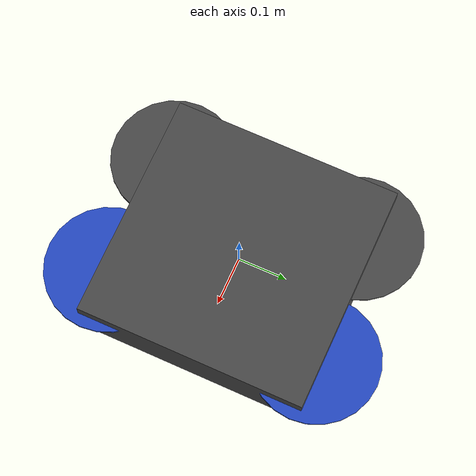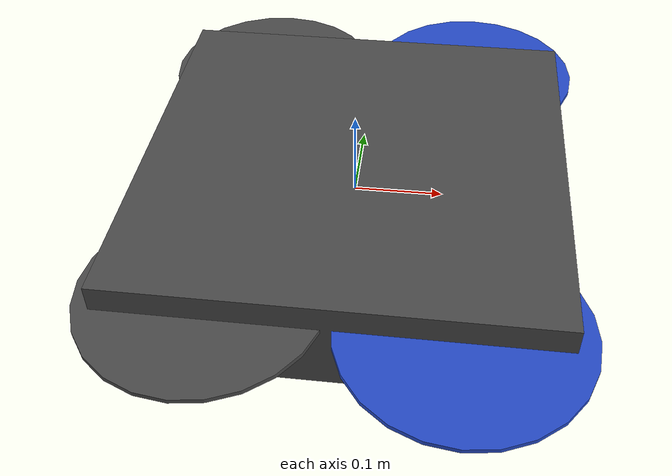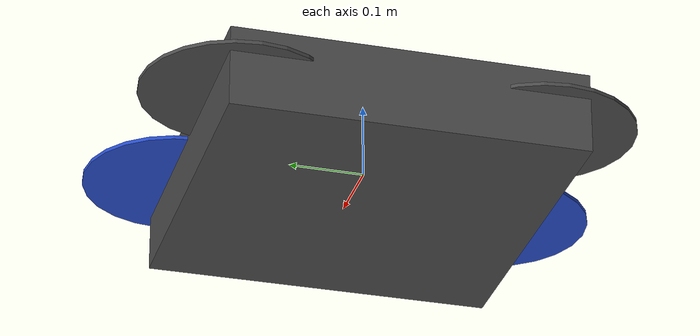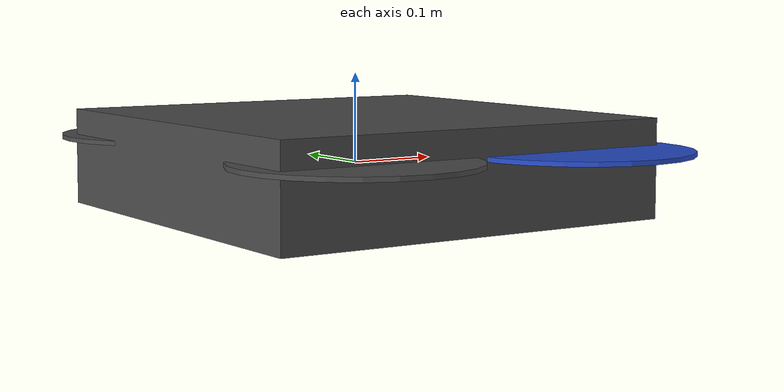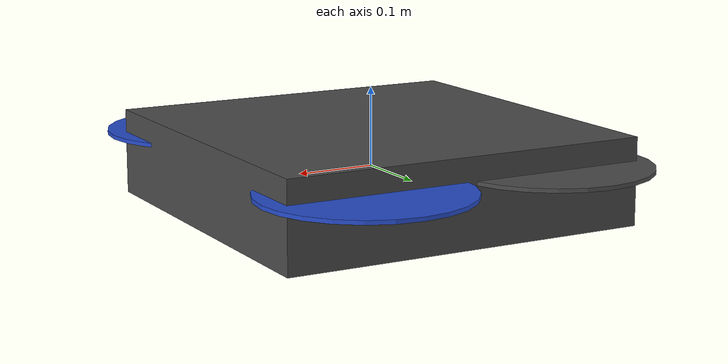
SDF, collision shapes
<sdf version='1.5'>
  <model name='iris_rangefinder'>
    <include>
      <uri>model://iris</uri>
    </include>

    <include>
      <pose>0 0 -0.035 0 1.575 0</pose>
      <uri>model://camera</uri>
    </include>

    <joint name="camera_mount" type="fixed">
      <parent>iris::base_link</parent>
      <child>camera::link</child>
    </joint>

  </model>
</sdf>

<!-- vim: set et ft=xml fenc=utf-8 ff=unix sts=0 sw=2 ts=2 : -->

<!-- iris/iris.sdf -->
<!-- DO NOT EDIT: Generated from iris.sdf.jinja -->
<sdf version='1.6'>
  <model name='iris'>
    <link name='base_link'>
      <pose>0 0 0 0 0 0</pose>
      <inertial>
        <pose>0 0 0 0 0 0</pose>
        <mass>1.5</mass>
        <inertia>
          <ixx>0.029125</ixx>
          <ixy>0</ixy>
          <ixz>0</ixz>
          <iyy>0.029125</iyy>
          <iyz>0</iyz>
          <izz>0.055225</izz>
        </inertia>
      </inertial>
      <collision name='base_link_inertia_collision'>
        <pose>0 0 0 0 0 0</pose>
        <geometry>
          <box>
            <size>0.47 0.47 0.11</size>
          </box>
        </geometry>
        <surface>
          <contact>
            <ode>
              <min_depth>0.001</min_depth>
              <max_vel>0</max_vel>
            </ode>
          </contact>
          <friction>
            <ode/>
          </friction>
        </surface>
      </collision>
      <visual name='base_link_inertia_visual'>
        <pose>0 0 0 0 0 0</pose>
        <geometry>
          <mesh>
            <scale>1 1 1</scale>
            <uri>model://iris/meshes/iris.stl</uri>
          </mesh>
        </geometry>
        <material>
          <script>
            <name>Gazebo/DarkGrey</name>
            <uri>file://media/materials/scripts/gazebo.material</uri>
          </script>
        </material>
      </visual>
      <gravity>1</gravity>
      <velocity_decay/>
      <sensor name="gps_sensor" type="gps">
        <always_on>true</always_on>
        <update_rate>10</update_rate>
        <plugin name="gps_controller" filename="libgazebo_ros_gps_sensor.so">
          <ros>
            <remapping>gps_controller/out:=gps_pos</remapping>
            <remapping>gps_controller/vel:=gps_vel</remapping>

          </ros>
          <frame_name>base_link</frame_name>
        </plugin>
      </sensor>
    </link>
    <link name='/imu_link'>
      <pose>0 0 0 0 0 0</pose>
      <inertial>
        <pose>0 0 0 0 0 0</pose>
        <mass>0.015</mass>
        <inertia>
          <ixx>1e-05</ixx>
          <ixy>0</ixy>
          <ixz>0</ixz>
          <iyy>1e-05</iyy>
          <iyz>0</iyz>
          <izz>1e-05</izz>
        </inertia>
      </inertial>
      <sensor name="imu_sensor" type="imu">
        <pose>0 0 0 3.141593 0 0</pose>
        <always_on>1</always_on>
        <update_rate>1000.0</update_rate>
      </sensor>
      <sensor name="gz_imu" type="imu">
        <always_on>true</always_on>
        <!-- Publish at 30 hz -->
        <update_rate>30</update_rate>
        <plugin name="my_imu_plugin" filename="libgazebo_ros_imu_sensor.so">
          <ros>
            <!-- Will publish to /imu/data -->
            <namespace>/imu</namespace>
            <remapping>~/out:=data</remapping>
          </ros>
          <!-- frame_name ommited, will be "my_link" -->
        </plugin>
      </sensor>
    </link>
    <joint name='/imu_joint' type='revolute'>
      <child>/imu_link</child>
      <parent>base_link</parent>
      <axis>
        <xyz>1 0 0</xyz>
        <limit>
          <lower>0</lower>
          <upper>0</upper>
          <effort>0</effort>
          <velocity>0</velocity>
        </limit>
        <dynamics>
          <spring_reference>0</spring_reference>
          <spring_stiffness>0</spring_stiffness>
        </dynamics>
        <use_parent_model_frame>1</use_parent_model_frame>
      </axis>
    </joint>
    <link name='rotor_0'>
      <pose>0.13 -0.22 0.023 0 0 0</pose>
      <inertial>
        <pose>0 0 0 0 0 0</pose>
        <mass>0.005</mass>
        <inertia>
          <ixx>9.75e-07</ixx>
          <ixy>0</ixy>
          <ixz>0</ixz>
          <iyy>0.000273104</iyy>
          <iyz>0</iyz>
          <izz>0.000274004</izz>
        </inertia>
      </inertial>
      <collision name='rotor_0_collision'>
        <pose>0 0 0 0 0 0</pose>
        <geometry>
          <cylinder>
            <length>0.005</length>
            <radius>0.128</radius>
          </cylinder>
        </geometry>
        <surface>
          <contact>
            <ode/>
          </contact>
          <friction>
            <ode/>
          </friction>
        </surface>
      </collision>
      <visual name='rotor_0_visual'>
        <pose>0 0 0 0 0 0</pose>
        <geometry>
          <mesh>
            <scale>1 1 1</scale>
            <uri>model://iris/meshes/iris_prop_ccw.dae</uri>
          </mesh>
        </geometry>
        <material>
          <script>
            <name>Gazebo/Blue</name>
            <uri>file://media/materials/scripts/gazebo.material</uri>
          </script>
        </material>
      </visual>
      <gravity>1</gravity>
      <velocity_decay/>
    </link>
    <joint name='rotor_0_joint' type='revolute'>
      <child>rotor_0</child>
      <parent>base_link</parent>
      <axis>
        <xyz>0 0 1</xyz>
        <limit>
          <lower>-1e+16</lower>
          <upper>1e+16</upper>
        </limit>
        <dynamics>
          <spring_reference>0</spring_reference>
          <spring_stiffness>0</spring_stiffness>
        </dynamics>
        <use_parent_model_frame>1</use_parent_model_frame>
      </axis>
    </joint>
    <link name='rotor_1'>
      <pose>-0.13 0.2 0.023 0 0 0</pose>
      <inertial>
        <pose>0 0 0 0 0 0</pose>
        <mass>0.005</mass>
        <inertia>
          <ixx>9.75e-07</ixx>
          <ixy>0</ixy>
          <ixz>0</ixz>
          <iyy>0.000273104</iyy>
          <iyz>0</iyz>
          <izz>0.000274004</izz>
        </inertia>
      </inertial>
      <collision name='rotor_1_collision'>
        <pose>0 0 0 0 0 0</pose>
        <geometry>
          <cylinder>
            <length>0.005</length>
            <radius>0.128</radius>
          </cylinder>
        </geometry>
        <surface>
          <contact>
            <ode/>
          </contact>
          <friction>
            <ode/>
          </friction>
        </surface>
      </collision>
      <visual name='rotor_1_visual'>
        <pose>0 0 0 0 0 0</pose>
        <geometry>
          <mesh>
            <scale>1 1 1</scale>
            <uri>model://iris/meshes/iris_prop_ccw.dae</uri>
          </mesh>
        </geometry>
        <material>
          <script>
            <name>Gazebo/DarkGrey</name>
            <uri>file://media/materials/scripts/gazebo.material</uri>
          </script>
        </material>
      </visual>
      <gravity>1</gravity>
      <velocity_decay/>
    </link>
    <joint name='rotor_1_joint' type='revolute'>
      <child>rotor_1</child>
      <parent>base_link</parent>
      <axis>
        <xyz>0 0 1</xyz>
        <limit>
          <lower>-1e+16</lower>
          <upper>1e+16</upper>
        </limit>
        <dynamics>
          <spring_reference>0</spring_reference>
          <spring_stiffness>0</spring_stiffness>
        </dynamics>
        <use_parent_model_frame>1</use_parent_model_frame>
      </axis>
    </joint>
    <link name='rotor_2'>
      <pose>0.13 0.22 0.023 0 0 0</pose>
      <inertial>
        <pose>0 0 0 0 0 0</pose>
        <mass>0.005</mass>
        <inertia>
          <ixx>9.75e-07</ixx>
          <ixy>0</ixy>
          <ixz>0</ixz>
          <iyy>0.000273104</iyy>
          <iyz>0</iyz>
          <izz>0.000274004</izz>
        </inertia>
      </inertial>
      <collision name='rotor_2_collision'>
        <pose>0 0 0 0 0 0</pose>
        <geometry>
          <cylinder>
            <length>0.005</length>
            <radius>0.128</radius>
          </cylinder>
        </geometry>
        <surface>
          <contact>
            <ode/>
          </contact>
          <friction>
            <ode/>
          </friction>
        </surface>
      </collision>
      <visual name='rotor_2_visual'>
        <pose>0 0 0 0 0 0</pose>
        <geometry>
          <mesh>
            <scale>1 1 1</scale>
            <uri>model://iris/meshes/iris_prop_cw.dae</uri>
          </mesh>
        </geometry>
        <material>
          <script>
            <name>Gazebo/Blue</name>
            <uri>file://media/materials/scripts/gazebo.material</uri>
          </script>
        </material>
      </visual>
      <gravity>1</gravity>
      <velocity_decay/>
    </link>
    <joint name='rotor_2_joint' type='revolute'>
      <child>rotor_2</child>
      <parent>base_link</parent>
      <axis>
        <xyz>0 0 1</xyz>
        <limit>
          <lower>-1e+16</lower>
          <upper>1e+16</upper>
        </limit>
        <dynamics>
          <spring_reference>0</spring_reference>
          <spring_stiffness>0</spring_stiffness>
        </dynamics>
        <use_parent_model_frame>1</use_parent_model_frame>
      </axis>
    </joint>
    <link name='rotor_3'>
      <pose>-0.13 -0.2 0.023 0 0 0</pose>
      <inertial>
        <pose>0 0 0 0 0 0</pose>
        <mass>0.005</mass>
        <inertia>
          <ixx>9.75e-07</ixx>
          <ixy>0</ixy>
          <ixz>0</ixz>
          <iyy>0.000273104</iyy>
          <iyz>0</iyz>
          <izz>0.000274004</izz>
        </inertia>
      </inertial>
      <collision name='rotor_3_collision'>
        <pose>0 0 0 0 0 0</pose>
        <geometry>
          <cylinder>
            <length>0.005</length>
            <radius>0.128</radius>
          </cylinder>
        </geometry>
        <surface>
          <contact>
            <ode/>
          </contact>
          <friction>
            <ode/>
          </friction>
        </surface>
      </collision>
      <visual name='rotor_3_visual'>
        <pose>0 0 0 0 0 0</pose>
        <geometry>
          <mesh>
            <scale>1 1 1</scale>
            <uri>model://iris/meshes/iris_prop_cw.dae</uri>
          </mesh>
        </geometry>
        <material>
          <script>
            <name>Gazebo/DarkGrey</name>
            <uri>file://media/materials/scripts/gazebo.material</uri>
          </script>
        </material>
      </visual>
      <gravity>1</gravity>
      <velocity_decay/>
    </link>
    <joint name='rotor_3_joint' type='revolute'>
      <child>rotor_3</child>
      <parent>base_link</parent>
      <axis>
        <xyz>0 0 1</xyz>
        <limit>
          <lower>-1e+16</lower>
          <upper>1e+16</upper>
        </limit>
        <dynamics>
          <spring_reference>0</spring_reference>
          <spring_stiffness>0</spring_stiffness>
        </dynamics>
        <use_parent_model_frame>1</use_parent_model_frame>
      </axis>
    </joint>

    <plugin name="rotor_0_blade_1" filename="libLiftDragPlugin.so">
      <a0>0.3</a0>
      <alpha_stall>1.4</alpha_stall>
      <cla>4.2500</cla>
      <cda>0.10</cda>
      <cma>0.00</cma>
      <cla_stall>-0.025</cla_stall>
      <cda_stall>0.0</cda_stall>
      <cma_stall>0.0</cma_stall>
      <area>0.002</area>
      <air_density>1.2041</air_density>
      <cp>0.084 0 0</cp>
      <forward>0 1 0</forward>
      <upward>0 0 1</upward>
      <link_name>iris::rotor_0</link_name>
    </plugin>
    <plugin name="rotor_0_blade_2" filename="libLiftDragPlugin.so">
      <a0>0.3</a0>
      <alpha_stall>1.4</alpha_stall>
      <cla>4.2500</cla>
      <cda>0.10</cda>
      <cma>0.00</cma>
      <cla_stall>-0.025</cla_stall>
      <cda_stall>0.0</cda_stall>
      <cma_stall>0.0</cma_stall>
      <area>0.002</area>
      <air_density>1.2041</air_density>
      <cp>-0.084 0 0</cp>
      <forward>0 -1 0</forward>
      <upward>0 0 1</upward>
      <link_name>iris::rotor_0</link_name>
    </plugin>

    <plugin name="rotor_1_blade_1" filename="libLiftDragPlugin.so">
      <a0>0.3</a0>
      <alpha_stall>1.4</alpha_stall>
      <cla>4.2500</cla>
      <cda>0.10</cda>
      <cma>0.00</cma>
      <cla_stall>-0.025</cla_stall>
      <cda_stall>0.0</cda_stall>
      <cma_stall>0.0</cma_stall>
      <area>0.002</area>
      <air_density>1.2041</air_density>
      <cp>0.084 0 0</cp>
      <forward>0 1 0</forward>
      <upward>0 0 1</upward>
      <link_name>iris::rotor_1</link_name>
    </plugin>
    <plugin name="rotor_1_blade_2" filename="libLiftDragPlugin.so">
      <a0>0.3</a0>
      <alpha_stall>1.4</alpha_stall>
      <cla>4.2500</cla>
      <cda>0.10</cda>
      <cma>0.00</cma>
      <cla_stall>-0.025</cla_stall>
      <cda_stall>0.0</cda_stall>
      <cma_stall>0.0</cma_stall>
      <area>0.002</area>
      <air_density>1.2041</air_density>
      <cp>-0.084 0 0</cp>
      <forward>0 -1 0</forward>
      <upward>0 0 1</upward>
      <link_name>iris::rotor_1</link_name>
    </plugin>

    <plugin name="rotor_2_blade_1" filename="libLiftDragPlugin.so">
      <a0>0.3</a0>
      <alpha_stall>1.4</alpha_stall>
      <cla>4.2500</cla>
      <cda>0.10</cda>
      <cma>0.00</cma>
      <cla_stall>-0.025</cla_stall>
      <cda_stall>0.0</cda_stall>
      <cma_stall>0.0</cma_stall>
      <area>0.002</area>
      <air_density>1.2041</air_density>
      <cp>0.084 0 0</cp>
      <forward>0 -1 0</forward>
      <upward>0 0 1</upward>
      <link_name>iris::rotor_2</link_name>
    </plugin>
    <plugin name="rotor_2_blade_2" filename="libLiftDragPlugin.so">
      <a0>0.3</a0>
      <alpha_stall>1.4</alpha_stall>
      <cla>4.2500</cla>
      <cda>0.10</cda>
      <cma>0.00</cma>
      <cla_stall>-0.025</cla_stall>
      <cda_stall>0.0</cda_stall>
      <cma_stall>0.0</cma_stall>
      <area>0.002</area>
      <air_density>1.2041</air_density>
      <cp>-0.084 0 0</cp>
      <forward>0 1 0</forward>
      <upward>0 0 1</upward>
      <link_name>iris::rotor_2</link_name>
    </plugin>

    <plugin name="rotor_3_blade_1" filename="libLiftDragPlugin.so">
      <a0>0.3</a0>
      <alpha_stall>1.4</alpha_stall>
      <cla>4.2500</cla>
      <cda>0.10</cda>
      <cma>0.00</cma>
      <cla_stall>-0.025</cla_stall>
      <cda_stall>0.0</cda_stall>
      <cma_stall>0.0</cma_stall>
      <area>0.002</area>
      <air_density>1.2041</air_density>
      <cp>0.084 0 0</cp>
      <forward>0 -1 0</forward>
      <upward>0 0 1</upward>
      <link_name>iris::rotor_3</link_name>
    </plugin>
    <plugin name="rotor_3_blade_2" filename="libLiftDragPlugin.so">
      <a0>0.3</a0>
      <alpha_stall>1.4</alpha_stall>
      <cla>4.2500</cla>
      <cda>0.10</cda>
      <cma>0.00</cma>
      <cla_stall>-0.025</cla_stall>
      <cda_stall>0.0</cda_stall>
      <cma_stall>0.0</cma_stall>
      <area>0.002</area>
      <air_density>1.2041</air_density>
      <cp>-0.084 0 0</cp>
      <forward>0 1 0</forward>
      <upward>0 0 1</upward>
      <link_name>iris::rotor_3</link_name>
    </plugin>
    <plugin name="arducopter_plugin" filename="libArduPilotPlugin.so">
      <fdm_addr>127.0.0.1</fdm_addr>
      <fdm_port_in>9002</fdm_port_in>
      <fdm_port_out>9003</fdm_port_out>
      <!--
          Require by APM :
          Only change model and gazebo from XYZ to XY-Z coordinates
      -->
      <modelXYZToAirplaneXForwardZDown>0 0 0 3.141593 0 0</modelXYZToAirplaneXForwardZDown>
      <gazeboXYZToNED>0 0 0 3.141593 0 0</gazeboXYZToNED>
      <imuName>/imu_link::imu_sensor</imuName>
      <connectionTimeoutMaxCount>5</connectionTimeoutMaxCount>
      <control channel="0">
        <!--
          incoming control command [0, 1]
          so offset it by 0 to get [0, 1]
          and divide max target by 1.
          offset = 0
          multiplier = 838 max rpm / 1 = 838
        -->
        <type>VELOCITY</type>
        <offset>0</offset>
        <p_gain>0.20</p_gain>
        <i_gain>0</i_gain>
        <d_gain>0</d_gain>
        <i_max>0</i_max>
        <i_min>0</i_min>
        <cmd_max>2.5</cmd_max>
        <cmd_min>-2.5</cmd_min>
        <jointName>iris::rotor_0_joint</jointName>
        <multiplier>838</multiplier>
        <controlVelocitySlowdownSim>1</controlVelocitySlowdownSim>
      </control>
      <control channel="1">
        <type>VELOCITY</type>
        <offset>0</offset>
        <p_gain>0.20</p_gain>
        <i_gain>0</i_gain>
        <d_gain>0</d_gain>
        <i_max>0</i_max>
        <i_min>0</i_min>
        <cmd_max>2.5</cmd_max>
        <cmd_min>-2.5</cmd_min>
        <jointName>iris::rotor_1_joint</jointName>
        <multiplier>838</multiplier>
        <controlVelocitySlowdownSim>1</controlVelocitySlowdownSim>
      </control>
      <control channel="2">
        <type>VELOCITY</type>
        <offset>0</offset>
        <p_gain>0.20</p_gain>
        <i_gain>0</i_gain>
        <d_gain>0</d_gain>
        <i_max>0</i_max>
        <i_min>0</i_min>
        <cmd_max>2.5</cmd_max>
        <cmd_min>-2.5</cmd_min>
        <jointName>iris::rotor_2_joint</jointName>
        <multiplier>-838</multiplier>
        <controlVelocitySlowdownSim>1</controlVelocitySlowdownSim>
      </control>
      <control channel="3">
        <type>VELOCITY</type>
        <offset>0</offset>
        <p_gain>0.20</p_gain>
        <i_gain>0</i_gain>
        <d_gain>0</d_gain>
        <i_max>0</i_max>
        <i_min>0</i_min>
        <cmd_max>2.5</cmd_max>
        <cmd_min>-2.5</cmd_min>
        <jointName>iris::rotor_3_joint</jointName>
        <multiplier>-838</multiplier>
        <controlVelocitySlowdownSim>1</controlVelocitySlowdownSim>
      </control>
    </plugin>

  </model>
</sdf>

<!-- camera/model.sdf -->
<sdf version="1.5">
  <model name="camera">

    <link name='link'>
      <inertial>
        <mass>0.015</mass>
        <inertia>
          <ixx>4.15e-6</ixx>
          <ixy>0</ixy>
          <ixz>0</ixz>
          <iyy>2.407e-6</iyy>
          <iyz>0</iyz>
          <izz>2.407e-6</izz>
        </inertia>
      </inertial>
      <collision name='collision'>
        <geometry>
          <box>
            <size>0.01 0.01 0.01</size>
          </box>
        </geometry>
        <max_contacts>10</max_contacts>
        <surface>
          <contact>
            <ode/>
          </contact>
          <bounce/>
          <friction>
            <ode/>
          </friction>
        </surface>
      </collision>
      <visual name='visual'>
        <geometry>
          <box>
            <size>0.01 0.01 0.01</size>
          </box>
        </geometry>
      </visual>
      <sensor type="camera" name="sensor_name">
        <always_on>1</always_on>
        <visualize>true</visualize>
        <update_rate>10</update_rate>
        <camera name="head">
          <horizontal_fov>1.0236</horizontal_fov>
          <image>

            <width>640</width>
            <height>480</height>
          </image>
          <clip>
            <near>0.1</near>
            <far>100</far>
          </clip>
        </camera>
        <plugin name="camera_controller" filename="libgazebo_ros_camera.so">
          <camera_name>camera</camera_name>
          <frame_name>camera_link_optical</frame_name>
        </plugin>
      </sensor>
    </link>
  </model>
</sdf>
